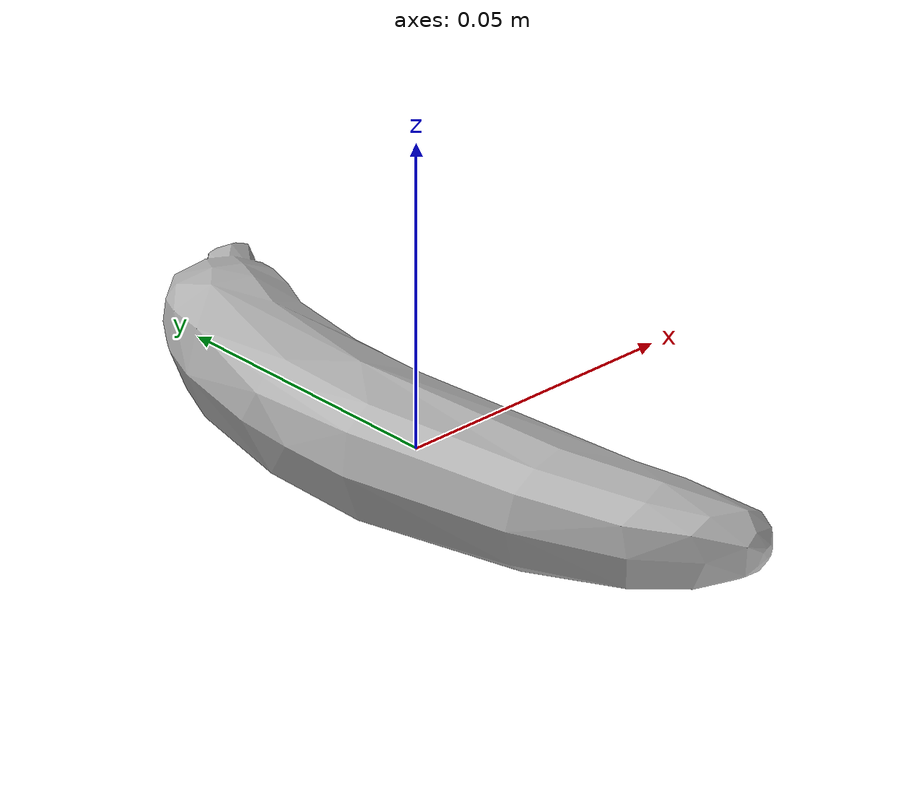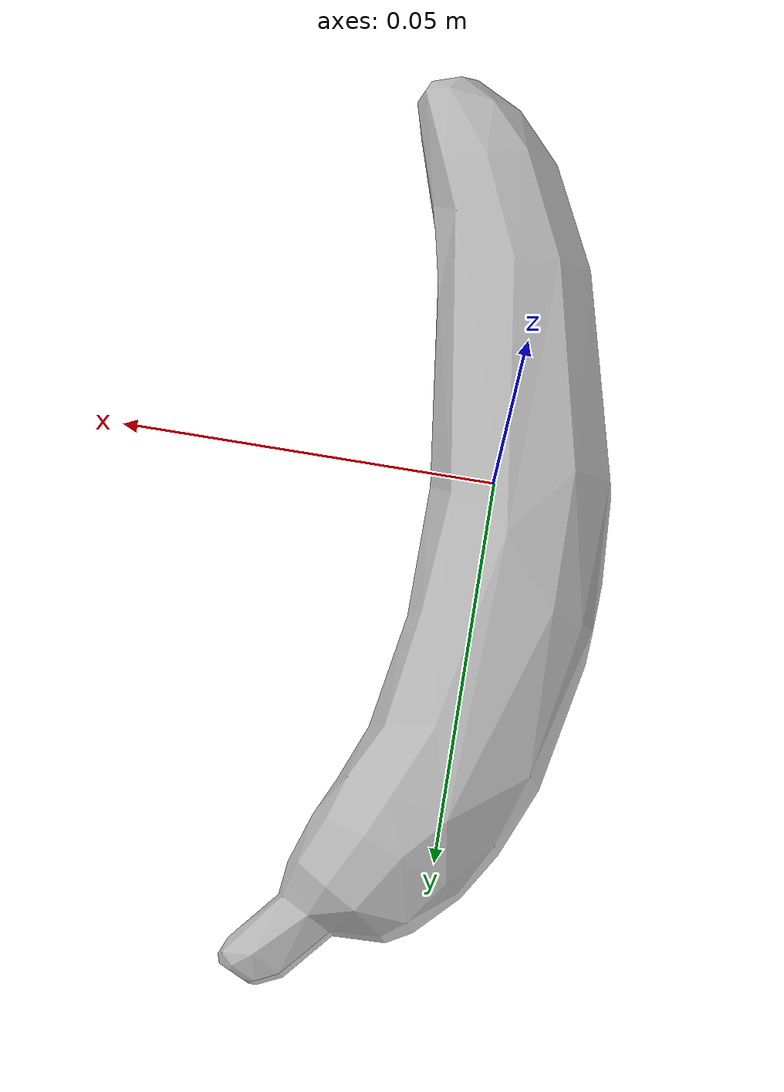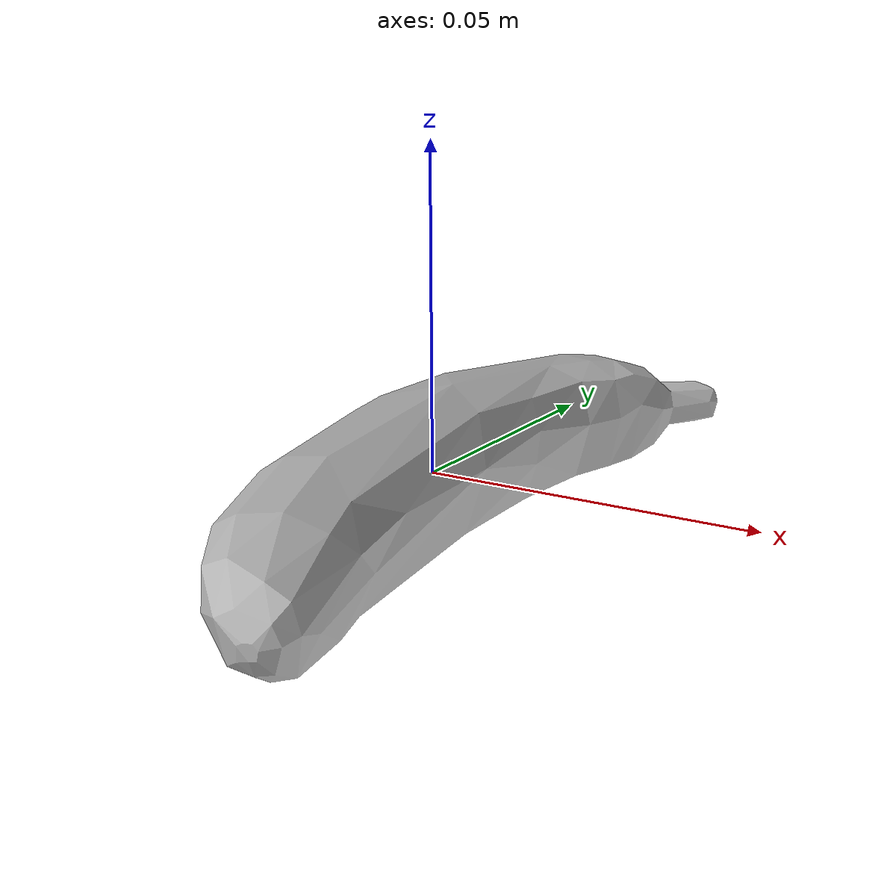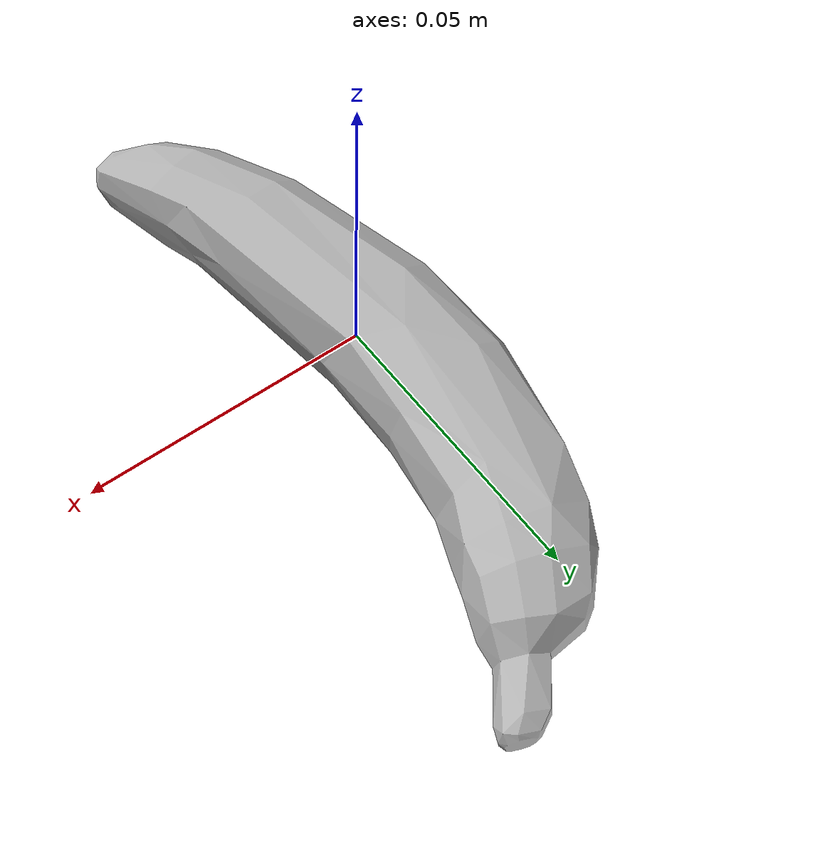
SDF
<?xml version="1.0" ?>
<sdf version="1.4">
    <model name='banana'>
      <link name='link'>
        <pose>0 0 0 0 0 0</pose>
        <inertial>
          <mass>0.14</mass>
          <inertia>
            <ixx>0.000203887</ixx>
            <ixy>0</ixy>
            <ixz>0</ixz>
            <iyy>0.0000233333</iyy>
            <iyz>0</iyz>
            <izz>0.000189887</izz>
          </inertia>
        </inertial>
        <visual name='banana'>
          <pose>0.0 0.0 0.0 0 0 0</pose>
          <geometry>
            <mesh>
              <uri>model://banana/meshes/banana.dae</uri>
            </mesh>
          </geometry>
          <material/>
        </visual>
        <collision name='collision_banana'>
          <pose>0 0 0 0 0 0</pose>
          <geometry>
            <mesh>
              <uri>model://banana/meshes/banana.stl</uri>
            </mesh>
          </geometry>
          <max_contacts>10</max_contacts>
          <surface>
            <bounce>
              <restitution_coefficient>0.2</restitution_coefficient>
              <threshold>0</threshold>
            </bounce>
            <friction>
              <ode/>
            </friction>
            <contact>
              <ode>
                <max_vel>10</max_vel>
              </ode>
            </contact>
          </surface>
        </collision>
        <velocity_decay>
          <linear>0</linear>
          <angular>0</angular>
        </velocity_decay>
        <self_collide>0</self_collide>
        <kinematic>0</kinematic>
        <gravity>1</gravity>
      </link>
      <static>0</static>
    </model>
</sdf>
